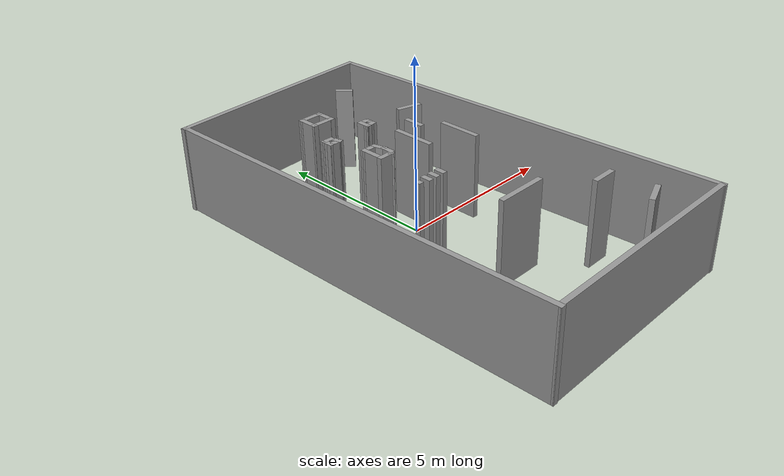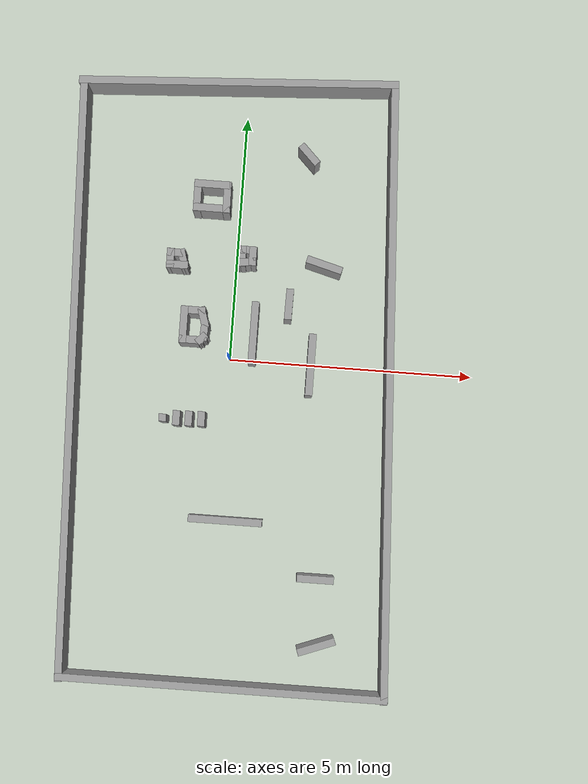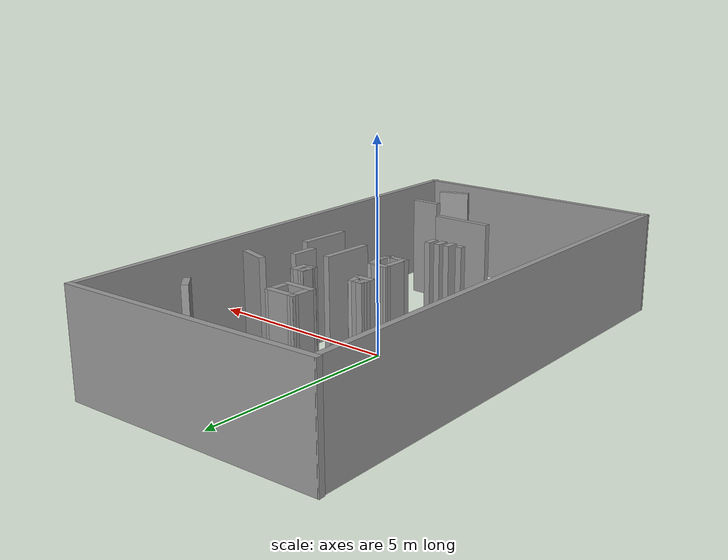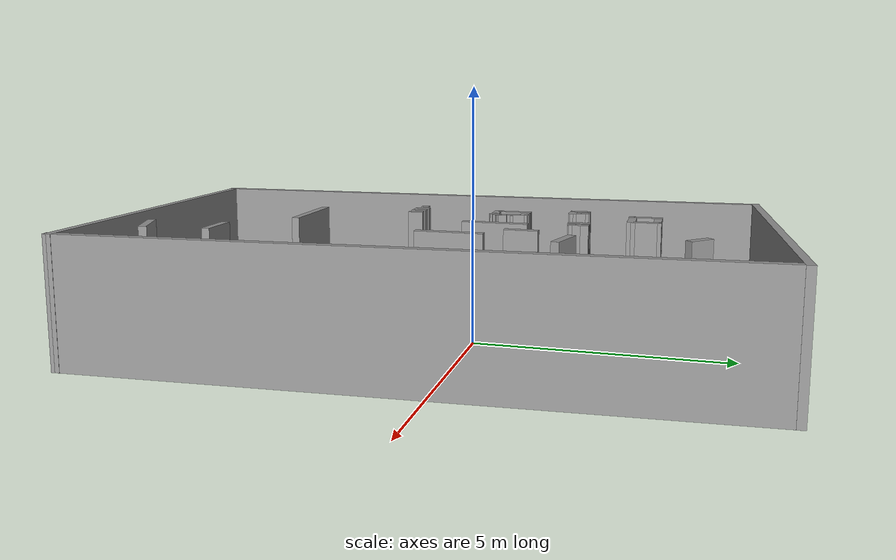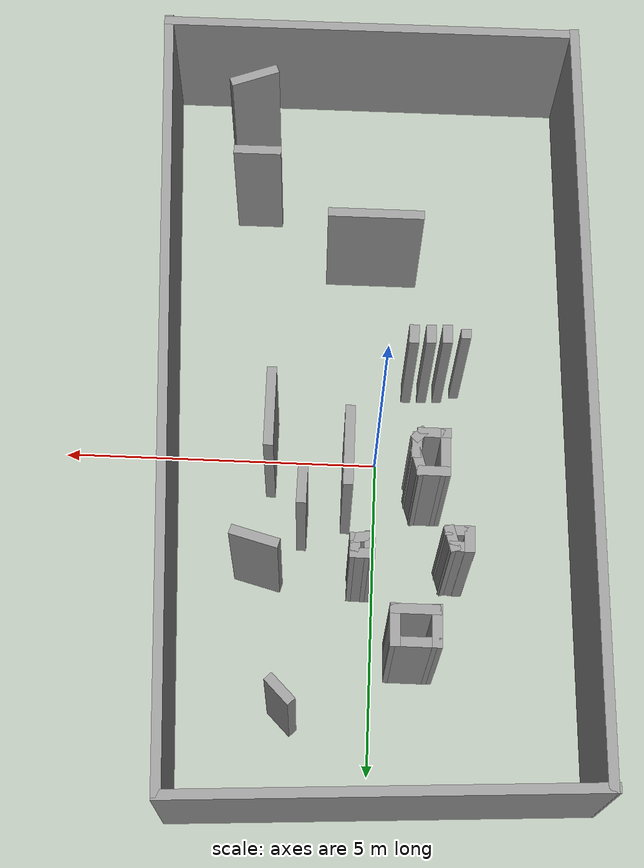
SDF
<?xml version='1.0'?>
<sdf version='1.7'>
  <model name='Mapa_12_11'>
    <pose>0.131702 -0.493546 0 0 -0 0</pose>
    <link name='Wall_0'>
      <collision name='Wall_0_Collision'>
        <geometry>
          <box>
            <size>6.48329 0.15 2.5</size>
          </box>
        </geometry>
        <pose>0 0 1.25 0 -0 0</pose>
      </collision>
      <visual name='Wall_0_Visual'>
        <pose>0 0 1.25 0 -0 0</pose>
        <geometry>
          <box>
            <size>6.48329 0.15 2.5</size>
          </box>
        </geometry>
        <material>
          <script>
            <uri>file://media/materials/scripts/gazebo.material</uri>
            <name>Gazebo/Grey</name>
          </script>
          <ambient>0 0 0 1</ambient>
        </material>
        <meta>
          <layer>0</layer>
        </meta>
      </visual>
      <pose>-0.336655 6.05338 0 0 -0 -3.0857</pose>
    </link>
    <link name='Wall_11'>
      <collision name='Wall_11_Collision'>
        <geometry>
          <box>
            <size>0.75 0.15 2.5</size>
          </box>
        </geometry>
        <pose>0 0 1.25 0 -0 0</pose>
      </collision>
      <visual name='Wall_11_Visual'>
        <pose>0 0 1.25 0 -0 0</pose>
        <geometry>
          <box>
            <size>0.75 0.15 2.5</size>
          </box>
        </geometry>
        <material>
          <script>
            <uri>file://media/materials/scripts/gazebo.material</uri>
            <name>Gazebo/Grey</name>
          </script>
          <ambient>1 1 1 1</ambient>
        </material>
        <meta>
          <layer>0</layer>
        </meta>
      </visual>
      <pose>-1.10053 1.08183 0 0 -0 -1.5708</pose>
    </link>
    <link name='Wall_12'>
      <collision name='Wall_12_Collision'>
        <geometry>
          <box>
            <size>0.5 0.15 2.5</size>
          </box>
        </geometry>
        <pose>0 0 1.25 0 -0 0</pose>
      </collision>
      <visual name='Wall_12_Visual'>
        <pose>0 0 1.25 0 -0 0</pose>
        <geometry>
          <box>
            <size>0.5 0.15 2.5</size>
          </box>
        </geometry>
        <material>
          <script>
            <uri>file://media/materials/scripts/gazebo.material</uri>
            <name>Gazebo/Grey</name>
          </script>
          <ambient>1 1 1 1</ambient>
        </material>
        <meta>
          <layer>0</layer>
        </meta>
      </visual>
      <pose>-0.925532 0.781828 0 0 -0 0</pose>
    </link>
    <link name='Wall_13'>
      <collision name='Wall_13_Collision'>
        <geometry>
          <box>
            <size>0.25 0.15 2.5</size>
          </box>
        </geometry>
        <pose>0 0 1.25 0 -0 0</pose>
      </collision>
      <visual name='Wall_13_Visual'>
        <pose>0 0 1.25 0 -0 0</pose>
        <geometry>
          <box>
            <size>0.25 0.15 2.5</size>
          </box>
        </geometry>
        <material>
          <script>
            <uri>file://media/materials/scripts/gazebo.material</uri>
            <name>Gazebo/Grey</name>
          </script>
          <ambient>1 1 1 1</ambient>
        </material>
        <meta>
          <layer>0</layer>
        </meta>
      </visual>
      <pose>-0.715176 0.817183 0 0 -0 0.785398</pose>
    </link>
    <link name='Wall_14'>
      <collision name='Wall_14_Collision'>
        <geometry>
          <box>
            <size>0.406264 0.15 2.5</size>
          </box>
        </geometry>
        <pose>0 0 1.25 0 -0 0</pose>
      </collision>
      <visual name='Wall_14_Visual'>
        <pose>0 0 1.25 0 -0 0</pose>
        <geometry>
          <box>
            <size>0.406264 0.15 2.5</size>
          </box>
        </geometry>
        <material>
          <script>
            <uri>file://media/materials/scripts/gazebo.material</uri>
            <name>Gazebo/Grey</name>
          </script>
          <ambient>1 1 1 1</ambient>
        </material>
        <meta>
          <layer>0</layer>
        </meta>
      </visual>
      <pose>-0.674182 0.980547 0 0 -0 1.52677</pose>
    </link>
    <link name='Wall_16'>
      <collision name='Wall_16_Collision'>
        <geometry>
          <box>
            <size>0.499369 0.15 2.5</size>
          </box>
        </geometry>
        <pose>0 0 1.25 0 -0 0</pose>
      </collision>
      <visual name='Wall_16_Visual'>
        <pose>0 0 1.25 0 -0 0</pose>
        <geometry>
          <box>
            <size>0.499369 0.15 2.5</size>
          </box>
        </geometry>
        <material>
          <script>
            <uri>file://media/materials/scripts/gazebo.material</uri>
            <name>Gazebo/Grey</name>
          </script>
          <ambient>1 1 1 1</ambient>
        </material>
        <meta>
          <layer>0</layer>
        </meta>
      </visual>
      <pose>-0.925856 1.38013 0 0 -0 -0.009725</pose>
    </link>
    <link name='Wall_17'>
      <collision name='Wall_17_Collision'>
        <geometry>
          <box>
            <size>0.432244 0.15 2.5</size>
          </box>
        </geometry>
        <pose>0 0 1.25 0 -0 0</pose>
      </collision>
      <visual name='Wall_17_Visual'>
        <pose>0 0 1.25 0 -0 0</pose>
        <geometry>
          <box>
            <size>0.432244 0.15 2.5</size>
          </box>
        </geometry>
        <material>
          <script>
            <uri>file://media/materials/scripts/gazebo.material</uri>
            <name>Gazebo/Grey</name>
          </script>
          <ambient>1 1 1 1</ambient>
        </material>
        <meta>
          <layer>0</layer>
        </meta>
      </visual>
      <pose>-0.709861 1.24725 0 0 -0 -1.27366</pose>
    </link>
    <link name='Wall_2'>
      <collision name='Wall_2_Collision'>
        <geometry>
          <box>
            <size>6.75 0.15 2.5</size>
          </box>
        </geometry>
        <pose>0 0 1.25 0 -0 0</pose>
      </collision>
      <visual name='Wall_2_Visual'>
        <pose>0 0 1.25 0 -0 0</pose>
        <geometry>
          <box>
            <size>6.75 0.15 2.5</size>
          </box>
        </geometry>
        <material>
          <script>
            <uri>file://media/materials/scripts/gazebo.material</uri>
            <name>Gazebo/Grey</name>
          </script>
          <ambient>1 1 1 1</ambient>
        </material>
        <meta>
          <layer>0</layer>
        </meta>
      </visual>
      <pose>0.198479 -6.21028 0 0 -0 0</pose>
    </link>
    <link name='Wall_24'>
      <collision name='Wall_24_Collision'>
        <geometry>
          <box>
            <size>0.397682 0.15 2.5</size>
          </box>
        </geometry>
        <pose>0 0 1.25 0 -0 0</pose>
      </collision>
      <visual name='Wall_24_Visual'>
        <pose>0 0 1.25 0 -0 0</pose>
        <geometry>
          <box>
            <size>0.397682 0.15 2.5</size>
          </box>
        </geometry>
        <material>
          <script>
            <uri>file://media/materials/scripts/gazebo.material</uri>
            <name>Gazebo/Grey</name>
          </script>
          <ambient>1 1 1 1</ambient>
        </material>
        <meta>
          <layer>0</layer>
        </meta>
      </visual>
      <pose>-1.46273 2.40121 0 0 -0 -1.55932</pose>
    </link>
    <link name='Wall_25'>
      <collision name='Wall_25_Collision'>
        <geometry>
          <box>
            <size>0.441231 0.15 2.5</size>
          </box>
        </geometry>
        <pose>0 0 1.25 0 -0 0</pose>
      </collision>
      <visual name='Wall_25_Visual'>
        <pose>0 0 1.25 0 -0 0</pose>
        <geometry>
          <box>
            <size>0.441231 0.15 2.5</size>
          </box>
        </geometry>
        <material>
          <script>
            <uri>file://media/materials/scripts/gazebo.material</uri>
            <name>Gazebo/Grey</name>
          </script>
          <ambient>1 1 1 1</ambient>
        </material>
        <meta>
          <layer>0</layer>
        </meta>
      </visual>
      <pose>-1.31858 2.27738 0 0 -0 0</pose>
    </link>
    <link name='Wall_26'>
      <collision name='Wall_26_Collision'>
        <geometry>
          <box>
            <size>0.399049 0.15 2.5</size>
          </box>
        </geometry>
        <pose>0 0 1.25 0 -0 0</pose>
      </collision>
      <visual name='Wall_26_Visual'>
        <pose>0 0 1.25 0 -0 0</pose>
        <geometry>
          <box>
            <size>0.399049 0.15 2.5</size>
          </box>
        </geometry>
        <material>
          <script>
            <uri>file://media/materials/scripts/gazebo.material</uri>
            <name>Gazebo/Grey</name>
          </script>
          <ambient>1 1 1 1</ambient>
        </material>
        <meta>
          <layer>0</layer>
        </meta>
      </visual>
      <pose>-1.20872 2.39994 0 0 -0 1.86175</pose>
    </link>
    <link name='Wall_27'>
      <collision name='Wall_27_Collision'>
        <geometry>
          <box>
            <size>0.369715 0.15 2.5</size>
          </box>
        </geometry>
        <pose>0 0 1.25 0 -0 0</pose>
      </collision>
      <visual name='Wall_27_Visual'>
        <pose>0 0 1.25 0 -0 0</pose>
        <geometry>
          <box>
            <size>0.369715 0.15 2.5</size>
          </box>
        </geometry>
        <material>
          <script>
            <uri>file://media/materials/scripts/gazebo.material</uri>
            <name>Gazebo/Grey</name>
          </script>
          <ambient>1 1 1 1</ambient>
        </material>
        <meta>
          <layer>0</layer>
        </meta>
      </visual>
      <pose>-1.3543 2.51908 0 0 -0 3.1132</pose>
    </link>
    <link name='Wall_34'>
      <collision name='Wall_34_Collision'>
        <geometry>
          <box>
            <size>0.363168 0.15 2.5</size>
          </box>
        </geometry>
        <pose>0 0 1.25 0 -0 0</pose>
      </collision>
      <visual name='Wall_34_Visual'>
        <pose>0 0 1.25 0 -0 0</pose>
        <geometry>
          <box>
            <size>0.363168 0.15 2.5</size>
          </box>
        </geometry>
        <material>
          <script>
            <uri>file://media/materials/scripts/gazebo.material</uri>
            <name>Gazebo/Grey</name>
          </script>
          <ambient>1 1 1 1</ambient>
        </material>
        <meta>
          <layer>0</layer>
        </meta>
      </visual>
      <pose>0.092915 2.67483 0 0 -0 3.131</pose>
    </link>
    <link name='Wall_35'>
      <collision name='Wall_35_Collision'>
        <geometry>
          <box>
            <size>0.41357 0.15 2.5</size>
          </box>
        </geometry>
        <pose>0 0 1.25 0 -0 0</pose>
      </collision>
      <visual name='Wall_35_Visual'>
        <pose>0 0 1.25 0 -0 0</pose>
        <geometry>
          <box>
            <size>0.41357 0.15 2.5</size>
          </box>
        </geometry>
        <material>
          <script>
            <uri>file://media/materials/scripts/gazebo.material</uri>
            <name>Gazebo/Grey</name>
          </script>
          <ambient>1 1 1 1</ambient>
        </material>
        <meta>
          <layer>0</layer>
        </meta>
      </visual>
      <pose>-0.015824 2.5442 0 0 -0 -1.55439</pose>
    </link>
    <link name='Wall_36'>
      <collision name='Wall_36_Collision'>
        <geometry>
          <box>
            <size>0.361837 0.15 2.5</size>
          </box>
        </geometry>
        <pose>0 0 1.25 0 -0 0</pose>
      </collision>
      <visual name='Wall_36_Visual'>
        <pose>0 0 1.25 0 -0 0</pose>
        <geometry>
          <box>
            <size>0.361837 0.15 2.5</size>
          </box>
        </geometry>
        <material>
          <script>
            <uri>file://media/materials/scripts/gazebo.material</uri>
            <name>Gazebo/Grey</name>
          </script>
          <ambient>1 1 1 1</ambient>
        </material>
        <meta>
          <layer>0</layer>
        </meta>
      </visual>
      <pose>0.091249 2.43132 0 0 -0 0.137971</pose>
    </link>
    <link name='Wall_37'>
      <collision name='Wall_37_Collision'>
        <geometry>
          <box>
            <size>0.382144 0.15 2.5</size>
          </box>
        </geometry>
        <pose>0 0 1.25 0 -0 0</pose>
      </collision>
      <visual name='Wall_37_Visual'>
        <pose>0 0 1.25 0 -0 0</pose>
        <geometry>
          <box>
            <size>0.382144 0.15 2.5</size>
          </box>
        </geometry>
        <material>
          <script>
            <uri>file://media/materials/scripts/gazebo.material</uri>
            <name>Gazebo/Grey</name>
          </script>
          <ambient>1 1 1 1</ambient>
        </material>
        <meta>
          <layer>0</layer>
        </meta>
      </visual>
      <pose>0.195665 2.55763 0 0 -0 1.57507</pose>
    </link>
    <link name='Wall_39'>
      <collision name='Wall_39_Collision'>
        <geometry>
          <box>
            <size>0.635683 0.15 2.5</size>
          </box>
        </geometry>
        <pose>0 0 1.25 0 -0 0</pose>
      </collision>
      <visual name='Wall_39_Visual'>
        <pose>0 0 1.25 0 -0 0</pose>
        <geometry>
          <box>
            <size>0.635683 0.15 2.5</size>
          </box>
        </geometry>
        <material>
          <script>
            <uri>file://media/materials/scripts/gazebo.material</uri>
            <name>Gazebo/Grey</name>
          </script>
          <ambient>1 1 1 1</ambient>
        </material>
        <meta>
          <layer>0</layer>
        </meta>
      </visual>
      <pose>-1.00958 3.70729 0 0 -0 -1.55902</pose>
    </link>
    <link name='Wall_40'>
      <collision name='Wall_40_Collision'>
        <geometry>
          <box>
            <size>0.75 0.15 2.5</size>
          </box>
        </geometry>
        <pose>0 0 1.25 0 -0 0</pose>
      </collision>
      <visual name='Wall_40_Visual'>
        <pose>0 0 1.25 0 -0 0</pose>
        <geometry>
          <box>
            <size>0.75 0.15 2.5</size>
          </box>
        </geometry>
        <material>
          <script>
            <uri>file://media/materials/scripts/gazebo.material</uri>
            <name>Gazebo/Grey</name>
          </script>
          <ambient>1 1 1 1</ambient>
        </material>
        <meta>
          <layer>0</layer>
        </meta>
      </visual>
      <pose>-0.706724 3.47018 0 0 -0 0</pose>
    </link>
    <link name='Wall_41'>
      <collision name='Wall_41_Collision'>
        <geometry>
          <box>
            <size>0.635683 0.15 2.5</size>
          </box>
        </geometry>
        <pose>0 0 1.25 0 -0 0</pose>
      </collision>
      <visual name='Wall_41_Visual'>
        <pose>0 0 1.25 0 -0 0</pose>
        <geometry>
          <box>
            <size>0.635683 0.15 2.5</size>
          </box>
        </geometry>
        <material>
          <script>
            <uri>file://media/materials/scripts/gazebo.material</uri>
            <name>Gazebo/Grey</name>
          </script>
          <ambient>1 1 1 1</ambient>
        </material>
        <meta>
          <layer>0</layer>
        </meta>
      </visual>
      <pose>-0.409583 3.70729 0 0 -0 1.58257</pose>
    </link>
    <link name='Wall_42'>
      <collision name='Wall_42_Collision'>
        <geometry>
          <box>
            <size>0.75 0.15 2.5</size>
          </box>
        </geometry>
        <pose>0 0 1.25 0 -0 0</pose>
      </collision>
      <visual name='Wall_42_Visual'>
        <pose>0 0 1.25 0 -0 0</pose>
        <geometry>
          <box>
            <size>0.75 0.15 2.5</size>
          </box>
        </geometry>
        <material>
          <script>
            <uri>file://media/materials/scripts/gazebo.material</uri>
            <name>Gazebo/Grey</name>
          </script>
          <ambient>1 1 1 1</ambient>
        </material>
        <meta>
          <layer>0</layer>
        </meta>
      </visual>
      <pose>-0.712442 3.95011 0 0 -0 3.14159</pose>
    </link>
    <link name='Wall_44'>
      <collision name='Wall_44_Collision'>
        <geometry>
          <box>
            <size>1.25 0.15 2.5</size>
          </box>
        </geometry>
        <pose>0 0 1.25 0 -0 0</pose>
      </collision>
      <visual name='Wall_44_Visual'>
        <pose>0 0 1.25 0 -0 0</pose>
        <geometry>
          <box>
            <size>1.25 0.15 2.5</size>
          </box>
        </geometry>
        <material>
          <script>
            <uri>file://media/materials/scripts/gazebo.material</uri>
            <name>Gazebo/Grey</name>
          </script>
          <ambient>1 1 1 1</ambient>
        </material>
        <meta>
          <layer>0</layer>
        </meta>
      </visual>
      <pose>1.52862 0.451164 0 0 -0 1.5708</pose>
    </link>
    <link name='Wall_48'>
      <collision name='Wall_48_Collision'>
        <geometry>
          <box>
            <size>0.15 0.15 2.5</size>
          </box>
        </geometry>
        <pose>0 0 1.25 0 -0 0</pose>
      </collision>
      <visual name='Wall_48_Visual'>
        <pose>0 0 1.25 0 -0 0</pose>
        <geometry>
          <box>
            <size>0.15 0.15 2.5</size>
          </box>
        </geometry>
        <material>
          <script>
            <uri>file://media/materials/scripts/gazebo.material</uri>
            <name>Gazebo/Grey</name>
          </script>
          <ambient>1 1 1 1</ambient>
        </material>
        <meta>
          <layer>0</layer>
        </meta>
      </visual>
      <pose>-1.38516 -0.831908 0 0 -0 0</pose>
    </link>
    <link name='Wall_5'>
      <collision name='Wall_5_Collision'>
        <geometry>
          <box>
            <size>12.2624 0.15 2.5</size>
          </box>
        </geometry>
        <pose>0 0 1.25 0 -0 0</pose>
      </collision>
      <visual name='Wall_5_Visual'>
        <pose>0 0 1.25 0 -0 0</pose>
        <geometry>
          <box>
            <size>12.2624 0.15 2.5</size>
          </box>
        </geometry>
        <material>
          <script>
            <uri>file://media/materials/scripts/gazebo.material</uri>
            <name>Gazebo/Grey</name>
          </script>
          <ambient>1 1 1 1</ambient>
        </material>
        <meta>
          <layer>0</layer>
        </meta>
      </visual>
      <pose>-3.28464 -0.176953 0 0 -0 -1.54055</pose>
    </link>
    <link name='Wall_55'>
      <collision name='Wall_55_Collision'>
        <geometry>
          <box>
            <size>0.3 0.15 2.5</size>
          </box>
        </geometry>
        <pose>0 0 1.25 0 -0 0</pose>
      </collision>
      <visual name='Wall_55_Visual'>
        <pose>0 0 1.25 0 -0 0</pose>
        <geometry>
          <box>
            <size>0.3 0.15 2.5</size>
          </box>
        </geometry>
        <material>
          <script>
            <uri>file://media/materials/scripts/gazebo.material</uri>
            <name>Gazebo/Grey</name>
          </script>
          <ambient>1 1 1 1</ambient>
        </material>
        <meta>
          <layer>0</layer>
        </meta>
      </visual>
      <pose>-1.10851 -0.817925 0 0 -0 1.5708</pose>
    </link>
    <link name='Wall_57'>
      <collision name='Wall_57_Collision'>
        <geometry>
          <box>
            <size>0.3 0.15 2.5</size>
          </box>
        </geometry>
        <pose>0 0 1.25 0 -0 0</pose>
      </collision>
      <visual name='Wall_57_Visual'>
        <pose>0 0 1.25 0 -0 0</pose>
        <geometry>
          <box>
            <size>0.3 0.15 2.5</size>
          </box>
        </geometry>
        <material>
          <script>
            <uri>file://media/materials/scripts/gazebo.material</uri>
            <name>Gazebo/Grey</name>
          </script>
          <ambient>1 1 1 1</ambient>
        </material>
        <meta>
          <layer>0</layer>
        </meta>
      </visual>
      <pose>-0.85898 -0.810363 0 0 -0 1.5708</pose>
    </link>
    <link name='Wall_59'>
      <collision name='Wall_59_Collision'>
        <geometry>
          <box>
            <size>0.3 0.15 2.5</size>
          </box>
        </geometry>
        <pose>0 0 1.25 0 -0 0</pose>
      </collision>
      <visual name='Wall_59_Visual'>
        <pose>0 0 1.25 0 -0 0</pose>
        <geometry>
          <box>
            <size>0.3 0.15 2.5</size>
          </box>
        </geometry>
        <material>
          <script>
            <uri>file://media/materials/scripts/gazebo.material</uri>
            <name>Gazebo/Grey</name>
          </script>
          <ambient>1 1 1 1</ambient>
        </material>
        <meta>
          <layer>0</layer>
        </meta>
      </visual>
      <pose>-0.601891 -0.802802 0 0 -0 1.5708</pose>
    </link>
    <link name='Wall_61'>
      <collision name='Wall_61_Collision'>
        <geometry>
          <box>
            <size>1.5 0.15 2.5</size>
          </box>
        </geometry>
        <pose>0 0 1.25 0 -0 0</pose>
      </collision>
      <visual name='Wall_61_Visual'>
        <pose>0 0 1.25 0 -0 0</pose>
        <geometry>
          <box>
            <size>1.5 0.15 2.5</size>
          </box>
        </geometry>
        <material>
          <script>
            <uri>file://media/materials/scripts/gazebo.material</uri>
            <name>Gazebo/Grey</name>
          </script>
          <ambient>1 1 1 1</ambient>
        </material>
        <meta>
          <layer>0</layer>
        </meta>
      </visual>
      <pose>0.027319 -2.82067 0 0 -0 3.14159</pose>
    </link>
    <link name='Wall_63'>
      <collision name='Wall_63_Collision'>
        <geometry>
          <box>
            <size>0.75 0.15 2.5</size>
          </box>
        </geometry>
        <pose>0 0 1.25 0 -0 0</pose>
      </collision>
      <visual name='Wall_63_Visual'>
        <pose>0 0 1.25 0 -0 0</pose>
        <geometry>
          <box>
            <size>0.75 0.15 2.5</size>
          </box>
        </geometry>
        <material>
          <script>
            <uri>file://media/materials/scripts/gazebo.material</uri>
            <name>Gazebo/Grey</name>
          </script>
          <ambient>1 1 1 1</ambient>
        </material>
        <meta>
          <layer>0</layer>
        </meta>
      </visual>
      <pose>1.93568 -3.87228 0 0 -0 0</pose>
    </link>
    <link name='Wall_66'>
      <collision name='Wall_66_Collision'>
        <geometry>
          <box>
            <size>0.791906 0.15 2.5</size>
          </box>
        </geometry>
        <pose>0 0 1.25 0 -0 0</pose>
      </collision>
      <visual name='Wall_66_Visual'>
        <pose>0 0 1.25 0 -0 0</pose>
        <geometry>
          <box>
            <size>0.791906 0.15 2.5</size>
          </box>
        </geometry>
        <material>
          <script>
            <uri>file://media/materials/scripts/gazebo.material</uri>
            <name>Gazebo/Grey</name>
          </script>
          <ambient>1 1 1 1</ambient>
        </material>
        <meta>
          <layer>0</layer>
        </meta>
      </visual>
      <pose>2.05166 -5.23092 0 0 -0 0.363338</pose>
    </link>
    <link name='Wall_69'>
      <collision name='Wall_69_Collision'>
        <geometry>
          <box>
            <size>0.621044 0.15 2.5</size>
          </box>
        </geometry>
        <pose>0 0 1.25 0 -0 0</pose>
      </collision>
      <visual name='Wall_69_Visual'>
        <pose>0 0 1.25 0 -0 0</pose>
        <geometry>
          <box>
            <size>0.621044 0.15 2.5</size>
          </box>
        </geometry>
        <material>
          <script>
            <uri>file://media/materials/scripts/gazebo.material</uri>
            <name>Gazebo/Grey</name>
          </script>
          <ambient>1 1 1 1</ambient>
        </material>
        <meta>
          <layer>0</layer>
        </meta>
      </visual>
      <pose>0.999869 1.64032 0 0 -0 1.55474</pose>
    </link>
    <link name='Wall_7'>
      <collision name='Wall_7_Collision'>
        <geometry>
          <box>
            <size>12.5983 0.15 2.5</size>
          </box>
        </geometry>
        <pose>0 0 1.25 0 -0 0</pose>
      </collision>
      <visual name='Wall_7_Visual'>
        <pose>0 0 1.25 0 -0 0</pose>
        <geometry>
          <box>
            <size>12.5983 0.15 2.5</size>
          </box>
        </geometry>
        <material>
          <script>
            <uri>file://media/materials/scripts/gazebo.material</uri>
            <name>Gazebo/Grey</name>
          </script>
          <ambient>1 1 1 1</ambient>
        </material>
        <meta>
          <layer>0</layer>
        </meta>
      </visual>
      <pose>3.16176 -0.015357 0 0 -0 1.62492</pose>
    </link>
    <link name='Wall_72'>
      <collision name='Wall_72_Collision'>
        <geometry>
          <box>
            <size>0.75 0.15 2.5</size>
          </box>
        </geometry>
        <pose>0 0 1.25 0 -0 0</pose>
      </collision>
      <visual name='Wall_72_Visual'>
        <pose>0 0 1.25 0 -0 0</pose>
        <geometry>
          <box>
            <size>0.75 0.15 2.5</size>
          </box>
        </geometry>
        <material>
          <script>
            <uri>file://media/materials/scripts/gazebo.material</uri>
            <name>Gazebo/Grey</name>
          </script>
          <ambient>1 1 1 1</ambient>
        </material>
        <meta>
          <layer>0</layer>
        </meta>
      </visual>
      <pose>1.65843 2.4843 0 0 -0 -0.261799</pose>
    </link>
    <link name='Wall_74'>
      <collision name='Wall_74_Collision'>
        <geometry>
          <box>
            <size>0.5 0.15 2.5</size>
          </box>
        </geometry>
        <pose>0 0 1.25 0 -0 0</pose>
      </collision>
      <visual name='Wall_74_Visual'>
        <pose>0 0 1.25 0 -0 0</pose>
        <geometry>
          <box>
            <size>0.5 0.15 2.5</size>
          </box>
        </geometry>
        <material>
          <script>
            <uri>file://media/materials/scripts/gazebo.material</uri>
            <name>Gazebo/Grey</name>
          </script>
          <ambient>1 1 1 1</ambient>
        </material>
        <meta>
          <layer>0</layer>
        </meta>
      </visual>
      <pose>1.19201 4.69589 0 0 -0 2.35619</pose>
    </link>
    <link name='Wall_9'>
      <collision name='Wall_9_Collision'>
        <geometry>
          <box>
            <size>1.25 0.15 2.5</size>
          </box>
        </geometry>
        <pose>0 0 1.25 0 -0 0</pose>
      </collision>
      <visual name='Wall_9_Visual'>
        <pose>0 0 1.25 0 -0 0</pose>
        <geometry>
          <box>
            <size>1.25 0.15 2.5</size>
          </box>
        </geometry>
        <material>
          <script>
            <uri>file://media/materials/scripts/gazebo.material</uri>
            <name>Gazebo/Grey</name>
          </script>
          <ambient>1 1 1 1</ambient>
        </material>
        <meta>
          <layer>0</layer>
        </meta>
      </visual>
      <pose>0.325555 1.01878 0 0 -0 1.5708</pose>
    </link>
    <static>1</static>
  </model>
</sdf>
